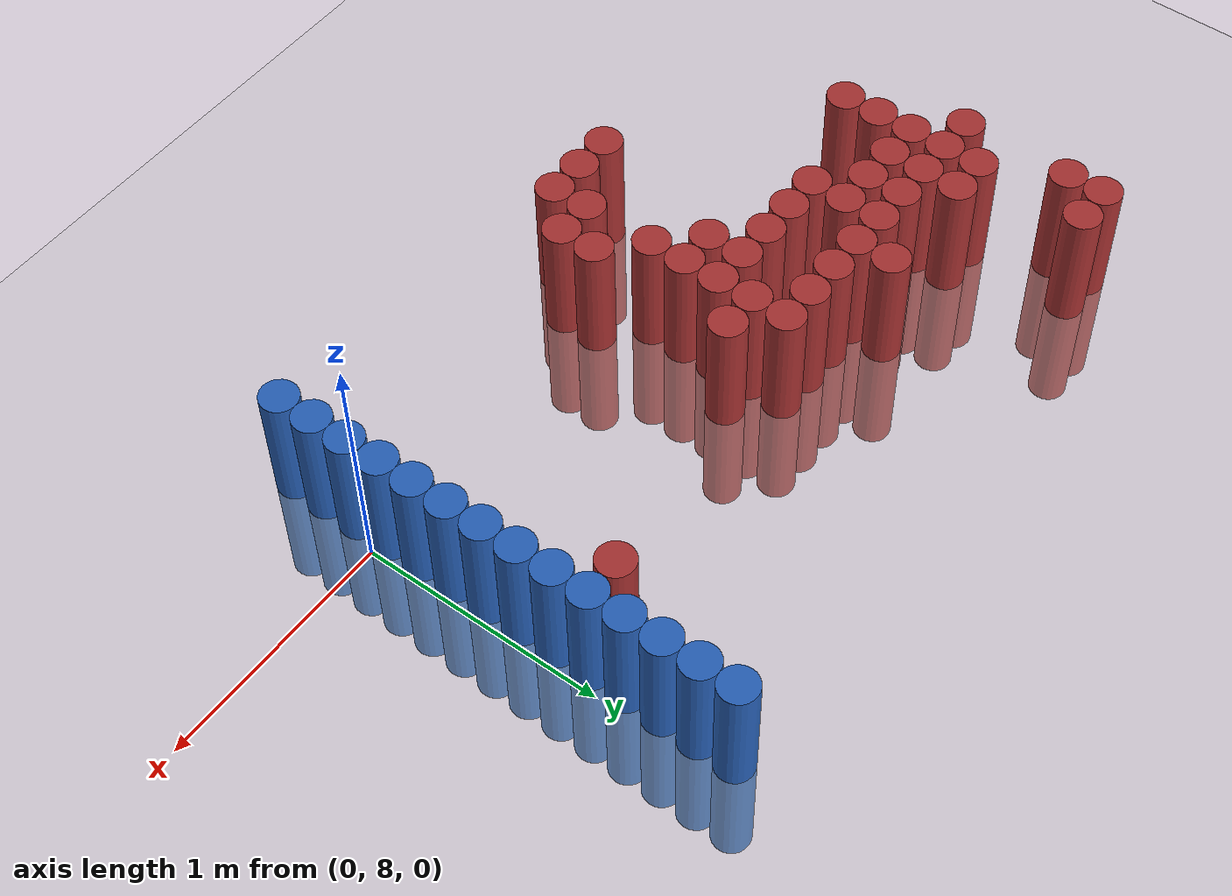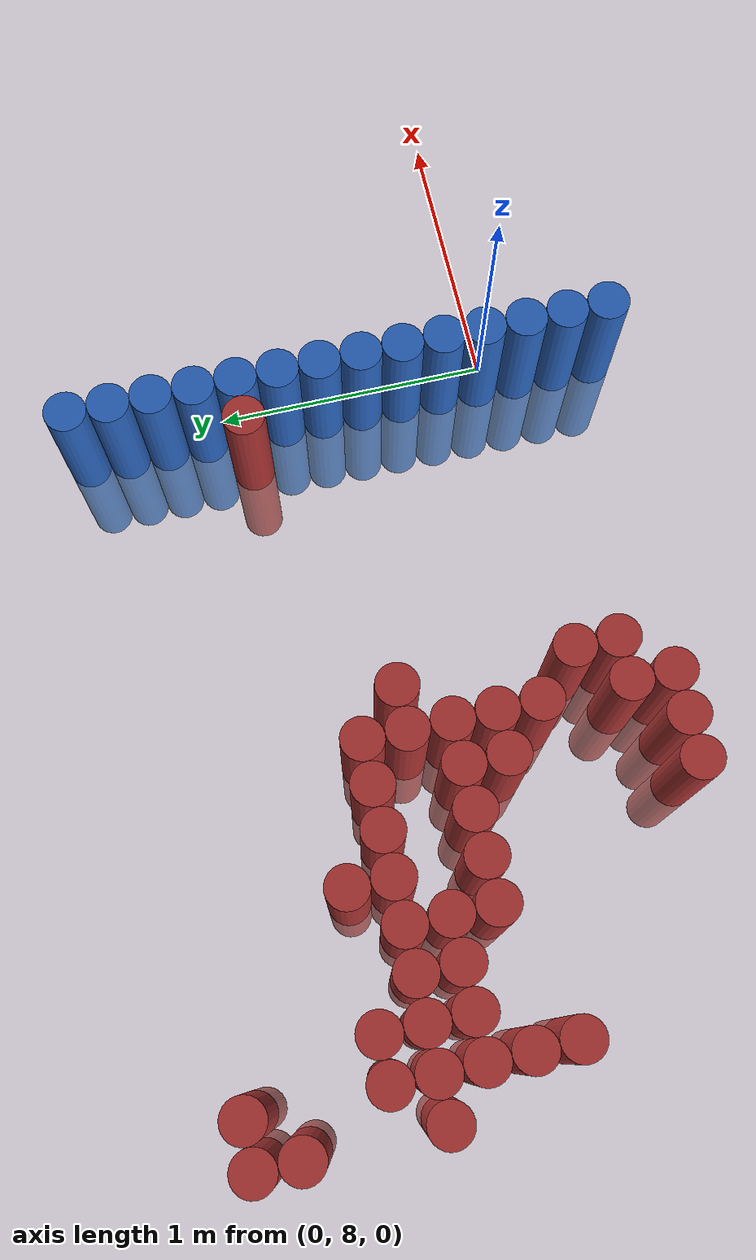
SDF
<sdf version="1.6">
 <world name="default">
  <model name="ground_plane">
   <static>1</static>
   <link name="link">
    <collision name="collision">
     <geometry><plane><normal>0 0 1</normal><size>100 100</size></plane></geometry>
     <surface><friction><ode><mu>100</mu><mu2>50</mu2></ode></friction></surface>
    </collision>
    <visual name="visual">
     <cast_shadows>0</cast_shadows>
     <geometry><plane><normal>0 0 1</normal><size>100 100</size></plane></geometry>
     <material>
      <script><uri>file://media/materials/scripts/gazebo.material</uri><name>Gazebo/Grey</name></script>
     </material>
    </visual>
   </link>
  </model>
  <model name="unit_cylinder_229">
   <static>1</static>
   <pose>-2.625000 8.775000 0.000000 0.000000 0.000000 0.000000</pose>
   <link name="link">
    <inertial>
     <mass>1</mass>
     <inertia><ixx>0.145833</ixx><ixy>0</ixy><ixz>0</ixz><iyy>0.145833</iyy><iyz>0</iyz><izz>0.125</izz></inertia>
    </inertial>
    <collision name="collision">
     <geometry><cylinder><radius>0.075000</radius><length>1</length></cylinder></geometry>
    </collision>
    <visual name="visual">
     <geometry><cylinder><radius>0.075000</radius><length>1</length></cylinder></geometry>
     <material>
      <ambient>0.648000 0.192000 0.192000 1</ambient>
      <diffuse>0.648000 0.192000 0.192000 1</diffuse>
     </material>
     <material>
      <script><name>Gazebo/Grey</name><uri>file://media/materials/scripts/gazebo.material</uri></script>
     </material>
    </visual>
   </link>
  </model>
  <model name="unit_cylinder_230">
   <static>1</static>
   <pose>-2.625000 9.225000 0.000000 0.000000 0.000000 0.000000</pose>
   <link name="link">
    <inertial>
     <mass>1</mass>
     <inertia><ixx>0.145833</ixx><ixy>0</ixy><ixz>0</ixz><iyy>0.145833</iyy><iyz>0</iyz><izz>0.125</izz></inertia>
    </inertial>
    <collision name="collision">
     <geometry><cylinder><radius>0.075000</radius><length>1</length></cylinder></geometry>
    </collision>
    <visual name="visual">
     <geometry><cylinder><radius>0.075000</radius><length>1</length></cylinder></geometry>
     <material>
      <ambient>0.648000 0.192000 0.192000 1</ambient>
      <diffuse>0.648000 0.192000 0.192000 1</diffuse>
     </material>
     <material>
      <script><name>Gazebo/Grey</name><uri>file://media/materials/scripts/gazebo.material</uri></script>
     </material>
    </visual>
   </link>
  </model>
  <model name="unit_cylinder_231">
   <static>1</static>
   <pose>-2.625000 9.375000 0.000000 0.000000 0.000000 0.000000</pose>
   <link name="link">
    <inertial>
     <mass>1</mass>
     <inertia><ixx>0.145833</ixx><ixy>0</ixy><ixz>0</ixz><iyy>0.145833</iyy><iyz>0</iyz><izz>0.125</izz></inertia>
    </inertial>
    <collision name="collision">
     <geometry><cylinder><radius>0.075000</radius><length>1</length></cylinder></geometry>
    </collision>
    <visual name="visual">
     <geometry><cylinder><radius>0.075000</radius><length>1</length></cylinder></geometry>
     <material>
      <ambient>0.648000 0.192000 0.192000 1</ambient>
      <diffuse>0.648000 0.192000 0.192000 1</diffuse>
     </material>
     <material>
      <script><name>Gazebo/Grey</name><uri>file://media/materials/scripts/gazebo.material</uri></script>
     </material>
    </visual>
   </link>
  </model>
  <model name="unit_cylinder_238">
   <static>1</static>
   <pose>-2.475000 8.325000 0.000000 0.000000 0.000000 0.000000</pose>
   <link name="link">
    <inertial>
     <mass>1</mass>
     <inertia><ixx>0.145833</ixx><ixy>0</ixy><ixz>0</ixz><iyy>0.145833</iyy><iyz>0</iyz><izz>0.125</izz></inertia>
    </inertial>
    <collision name="collision">
     <geometry><cylinder><radius>0.075000</radius><length>1</length></cylinder></geometry>
    </collision>
    <visual name="visual">
     <geometry><cylinder><radius>0.075000</radius><length>1</length></cylinder></geometry>
     <material>
      <ambient>0.648000 0.192000 0.192000 1</ambient>
      <diffuse>0.648000 0.192000 0.192000 1</diffuse>
     </material>
     <material>
      <script><name>Gazebo/Grey</name><uri>file://media/materials/scripts/gazebo.material</uri></script>
     </material>
    </visual>
   </link>
  </model>
  <model name="unit_cylinder_239">
   <static>1</static>
   <pose>-2.475000 8.475000 0.000000 0.000000 0.000000 0.000000</pose>
   <link name="link">
    <inertial>
     <mass>1</mass>
     <inertia><ixx>0.145833</ixx><ixy>0</ixy><ixz>0</ixz><iyy>0.145833</iyy><iyz>0</iyz><izz>0.125</izz></inertia>
    </inertial>
    <collision name="collision">
     <geometry><cylinder><radius>0.075000</radius><length>1</length></cylinder></geometry>
    </collision>
    <visual name="visual">
     <geometry><cylinder><radius>0.075000</radius><length>1</length></cylinder></geometry>
     <material>
      <ambient>0.648000 0.192000 0.192000 1</ambient>
      <diffuse>0.648000 0.192000 0.192000 1</diffuse>
     </material>
     <material>
      <script><name>Gazebo/Grey</name><uri>file://media/materials/scripts/gazebo.material</uri></script>
     </material>
    </visual>
   </link>
  </model>
  <model name="unit_cylinder_240">
   <static>1</static>
   <pose>-2.475000 8.625000 0.000000 0.000000 0.000000 0.000000</pose>
   <link name="link">
    <inertial>
     <mass>1</mass>
     <inertia><ixx>0.145833</ixx><ixy>0</ixy><ixz>0</ixz><iyy>0.145833</iyy><iyz>0</iyz><izz>0.125</izz></inertia>
    </inertial>
    <collision name="collision">
     <geometry><cylinder><radius>0.075000</radius><length>1</length></cylinder></geometry>
    </collision>
    <visual name="visual">
     <geometry><cylinder><radius>0.075000</radius><length>1</length></cylinder></geometry>
     <material>
      <ambient>0.648000 0.192000 0.192000 1</ambient>
      <diffuse>0.648000 0.192000 0.192000 1</diffuse>
     </material>
     <material>
      <script><name>Gazebo/Grey</name><uri>file://media/materials/scripts/gazebo.material</uri></script>
     </material>
    </visual>
   </link>
  </model>
  <model name="unit_cylinder_241">
   <static>1</static>
   <pose>-2.475000 8.775000 0.000000 0.000000 0.000000 0.000000</pose>
   <link name="link">
    <inertial>
     <mass>1</mass>
     <inertia><ixx>0.145833</ixx><ixy>0</ixy><ixz>0</ixz><iyy>0.145833</iyy><iyz>0</iyz><izz>0.125</izz></inertia>
    </inertial>
    <collision name="collision">
     <geometry><cylinder><radius>0.075000</radius><length>1</length></cylinder></geometry>
    </collision>
    <visual name="visual">
     <geometry><cylinder><radius>0.075000</radius><length>1</length></cylinder></geometry>
     <material>
      <ambient>0.648000 0.192000 0.192000 1</ambient>
      <diffuse>0.648000 0.192000 0.192000 1</diffuse>
     </material>
     <material>
      <script><name>Gazebo/Grey</name><uri>file://media/materials/scripts/gazebo.material</uri></script>
     </material>
    </visual>
   </link>
  </model>
  <model name="unit_cylinder_242">
   <static>1</static>
   <pose>-2.475000 8.925000 0.000000 0.000000 0.000000 0.000000</pose>
   <link name="link">
    <inertial>
     <mass>1</mass>
     <inertia><ixx>0.145833</ixx><ixy>0</ixy><ixz>0</ixz><iyy>0.145833</iyy><iyz>0</iyz><izz>0.125</izz></inertia>
    </inertial>
    <collision name="collision">
     <geometry><cylinder><radius>0.075000</radius><length>1</length></cylinder></geometry>
    </collision>
    <visual name="visual">
     <geometry><cylinder><radius>0.075000</radius><length>1</length></cylinder></geometry>
     <material>
      <ambient>0.648000 0.192000 0.192000 1</ambient>
      <diffuse>0.648000 0.192000 0.192000 1</diffuse>
     </material>
     <material>
      <script><name>Gazebo/Grey</name><uri>file://media/materials/scripts/gazebo.material</uri></script>
     </material>
    </visual>
   </link>
  </model>
  <model name="unit_cylinder_243">
   <static>1</static>
   <pose>-2.475000 9.375000 0.000000 0.000000 0.000000 0.000000</pose>
   <link name="link">
    <inertial>
     <mass>1</mass>
     <inertia><ixx>0.145833</ixx><ixy>0</ixy><ixz>0</ixz><iyy>0.145833</iyy><iyz>0</iyz><izz>0.125</izz></inertia>
    </inertial>
    <collision name="collision">
     <geometry><cylinder><radius>0.075000</radius><length>1</length></cylinder></geometry>
    </collision>
    <visual name="visual">
     <geometry><cylinder><radius>0.075000</radius><length>1</length></cylinder></geometry>
     <material>
      <ambient>0.648000 0.192000 0.192000 1</ambient>
      <diffuse>0.648000 0.192000 0.192000 1</diffuse>
     </material>
     <material>
      <script><name>Gazebo/Grey</name><uri>file://media/materials/scripts/gazebo.material</uri></script>
     </material>
    </visual>
   </link>
  </model>
  <model name="unit_cylinder_250">
   <static>1</static>
   <pose>-2.325000 8.625000 0.000000 0.000000 0.000000 0.000000</pose>
   <link name="link">
    <inertial>
     <mass>1</mass>
     <inertia><ixx>0.145833</ixx><ixy>0</ixy><ixz>0</ixz><iyy>0.145833</iyy><iyz>0</iyz><izz>0.125</izz></inertia>
    </inertial>
    <collision name="collision">
     <geometry><cylinder><radius>0.075000</radius><length>1</length></cylinder></geometry>
    </collision>
    <visual name="visual">
     <geometry><cylinder><radius>0.075000</radius><length>1</length></cylinder></geometry>
     <material>
      <ambient>0.648000 0.192000 0.192000 1</ambient>
      <diffuse>0.648000 0.192000 0.192000 1</diffuse>
     </material>
     <material>
      <script><name>Gazebo/Grey</name><uri>file://media/materials/scripts/gazebo.material</uri></script>
     </material>
    </visual>
   </link>
  </model>
  <model name="unit_cylinder_251">
   <static>1</static>
   <pose>-2.325000 8.775000 0.000000 0.000000 0.000000 0.000000</pose>
   <link name="link">
    <inertial>
     <mass>1</mass>
     <inertia><ixx>0.145833</ixx><ixy>0</ixy><ixz>0</ixz><iyy>0.145833</iyy><iyz>0</iyz><izz>0.125</izz></inertia>
    </inertial>
    <collision name="collision">
     <geometry><cylinder><radius>0.075000</radius><length>1</length></cylinder></geometry>
    </collision>
    <visual name="visual">
     <geometry><cylinder><radius>0.075000</radius><length>1</length></cylinder></geometry>
     <material>
      <ambient>0.648000 0.192000 0.192000 1</ambient>
      <diffuse>0.648000 0.192000 0.192000 1</diffuse>
     </material>
     <material>
      <script><name>Gazebo/Grey</name><uri>file://media/materials/scripts/gazebo.material</uri></script>
     </material>
    </visual>
   </link>
  </model>
  <model name="unit_cylinder_252">
   <static>1</static>
   <pose>-2.325000 8.925000 0.000000 0.000000 0.000000 0.000000</pose>
   <link name="link">
    <inertial>
     <mass>1</mass>
     <inertia><ixx>0.145833</ixx><ixy>0</ixy><ixz>0</ixz><iyy>0.145833</iyy><iyz>0</iyz><izz>0.125</izz></inertia>
    </inertial>
    <collision name="collision">
     <geometry><cylinder><radius>0.075000</radius><length>1</length></cylinder></geometry>
    </collision>
    <visual name="visual">
     <geometry><cylinder><radius>0.075000</radius><length>1</length></cylinder></geometry>
     <material>
      <ambient>0.648000 0.192000 0.192000 1</ambient>
      <diffuse>0.648000 0.192000 0.192000 1</diffuse>
     </material>
     <material>
      <script><name>Gazebo/Grey</name><uri>file://media/materials/scripts/gazebo.material</uri></script>
     </material>
    </visual>
   </link>
  </model>
  <model name="unit_cylinder_261">
   <static>1</static>
   <pose>-2.175000 8.625000 0.000000 0.000000 0.000000 0.000000</pose>
   <link name="link">
    <inertial>
     <mass>1</mass>
     <inertia><ixx>0.145833</ixx><ixy>0</ixy><ixz>0</ixz><iyy>0.145833</iyy><iyz>0</iyz><izz>0.125</izz></inertia>
    </inertial>
    <collision name="collision">
     <geometry><cylinder><radius>0.075000</radius><length>1</length></cylinder></geometry>
    </collision>
    <visual name="visual">
     <geometry><cylinder><radius>0.075000</radius><length>1</length></cylinder></geometry>
     <material>
      <ambient>0.648000 0.192000 0.192000 1</ambient>
      <diffuse>0.648000 0.192000 0.192000 1</diffuse>
     </material>
     <material>
      <script><name>Gazebo/Grey</name><uri>file://media/materials/scripts/gazebo.material</uri></script>
     </material>
    </visual>
   </link>
  </model>
  <model name="unit_cylinder_262">
   <static>1</static>
   <pose>-2.175000 8.775000 0.000000 0.000000 0.000000 0.000000</pose>
   <link name="link">
    <inertial>
     <mass>1</mass>
     <inertia><ixx>0.145833</ixx><ixy>0</ixy><ixz>0</ixz><iyy>0.145833</iyy><iyz>0</iyz><izz>0.125</izz></inertia>
    </inertial>
    <collision name="collision">
     <geometry><cylinder><radius>0.075000</radius><length>1</length></cylinder></geometry>
    </collision>
    <visual name="visual">
     <geometry><cylinder><radius>0.075000</radius><length>1</length></cylinder></geometry>
     <material>
      <ambient>0.648000 0.192000 0.192000 1</ambient>
      <diffuse>0.648000 0.192000 0.192000 1</diffuse>
     </material>
     <material>
      <script><name>Gazebo/Grey</name><uri>file://media/materials/scripts/gazebo.material</uri></script>
     </material>
    </visual>
   </link>
  </model>
  <model name="unit_cylinder_265">
   <static>1</static>
   <pose>-2.025000 8.475000 0.000000 0.000000 0.000000 0.000000</pose>
   <link name="link">
    <inertial>
     <mass>1</mass>
     <inertia><ixx>0.145833</ixx><ixy>0</ixy><ixz>0</ixz><iyy>0.145833</iyy><iyz>0</iyz><izz>0.125</izz></inertia>
    </inertial>
    <collision name="collision">
     <geometry><cylinder><radius>0.075000</radius><length>1</length></cylinder></geometry>
    </collision>
    <visual name="visual">
     <geometry><cylinder><radius>0.075000</radius><length>1</length></cylinder></geometry>
     <material>
      <ambient>0.648000 0.192000 0.192000 1</ambient>
      <diffuse>0.648000 0.192000 0.192000 1</diffuse>
     </material>
     <material>
      <script><name>Gazebo/Grey</name><uri>file://media/materials/scripts/gazebo.material</uri></script>
     </material>
    </visual>
   </link>
  </model>
  <model name="unit_cylinder_266">
   <static>1</static>
   <pose>-2.025000 8.625000 0.000000 0.000000 0.000000 0.000000</pose>
   <link name="link">
    <inertial>
     <mass>1</mass>
     <inertia><ixx>0.145833</ixx><ixy>0</ixy><ixz>0</ixz><iyy>0.145833</iyy><iyz>0</iyz><izz>0.125</izz></inertia>
    </inertial>
    <collision name="collision">
     <geometry><cylinder><radius>0.075000</radius><length>1</length></cylinder></geometry>
    </collision>
    <visual name="visual">
     <geometry><cylinder><radius>0.075000</radius><length>1</length></cylinder></geometry>
     <material>
      <ambient>0.648000 0.192000 0.192000 1</ambient>
      <diffuse>0.648000 0.192000 0.192000 1</diffuse>
     </material>
     <material>
      <script><name>Gazebo/Grey</name><uri>file://media/materials/scripts/gazebo.material</uri></script>
     </material>
    </visual>
   </link>
  </model>
  <model name="unit_cylinder_267">
   <static>1</static>
   <pose>-2.025000 8.775000 0.000000 0.000000 0.000000 0.000000</pose>
   <link name="link">
    <inertial>
     <mass>1</mass>
     <inertia><ixx>0.145833</ixx><ixy>0</ixy><ixz>0</ixz><iyy>0.145833</iyy><iyz>0</iyz><izz>0.125</izz></inertia>
    </inertial>
    <collision name="collision">
     <geometry><cylinder><radius>0.075000</radius><length>1</length></cylinder></geometry>
    </collision>
    <visual name="visual">
     <geometry><cylinder><radius>0.075000</radius><length>1</length></cylinder></geometry>
     <material>
      <ambient>0.648000 0.192000 0.192000 1</ambient>
      <diffuse>0.648000 0.192000 0.192000 1</diffuse>
     </material>
     <material>
      <script><name>Gazebo/Grey</name><uri>file://media/materials/scripts/gazebo.material</uri></script>
     </material>
    </visual>
   </link>
  </model>
  <model name="unit_cylinder_273">
   <static>1</static>
   <pose>-1.875000 8.475000 0.000000 0.000000 0.000000 0.000000</pose>
   <link name="link">
    <inertial>
     <mass>1</mass>
     <inertia><ixx>0.145833</ixx><ixy>0</ixy><ixz>0</ixz><iyy>0.145833</iyy><iyz>0</iyz><izz>0.125</izz></inertia>
    </inertial>
    <collision name="collision">
     <geometry><cylinder><radius>0.075000</radius><length>1</length></cylinder></geometry>
    </collision>
    <visual name="visual">
     <geometry><cylinder><radius>0.075000</radius><length>1</length></cylinder></geometry>
     <material>
      <ambient>0.648000 0.192000 0.192000 1</ambient>
      <diffuse>0.648000 0.192000 0.192000 1</diffuse>
     </material>
     <material>
      <script><name>Gazebo/Grey</name><uri>file://media/materials/scripts/gazebo.material</uri></script>
     </material>
    </visual>
   </link>
  </model>
  <model name="unit_cylinder_274">
   <static>1</static>
   <pose>-1.875000 8.775000 0.000000 0.000000 0.000000 0.000000</pose>
   <link name="link">
    <inertial>
     <mass>1</mass>
     <inertia><ixx>0.145833</ixx><ixy>0</ixy><ixz>0</ixz><iyy>0.145833</iyy><iyz>0</iyz><izz>0.125</izz></inertia>
    </inertial>
    <collision name="collision">
     <geometry><cylinder><radius>0.075000</radius><length>1</length></cylinder></geometry>
    </collision>
    <visual name="visual">
     <geometry><cylinder><radius>0.075000</radius><length>1</length></cylinder></geometry>
     <material>
      <ambient>0.648000 0.192000 0.192000 1</ambient>
      <diffuse>0.648000 0.192000 0.192000 1</diffuse>
     </material>
     <material>
      <script><name>Gazebo/Grey</name><uri>file://media/materials/scripts/gazebo.material</uri></script>
     </material>
    </visual>
   </link>
  </model>
  <model name="unit_cylinder_275">
   <static>1</static>
   <pose>-1.875000 8.925000 0.000000 0.000000 0.000000 0.000000</pose>
   <link name="link">
    <inertial>
     <mass>1</mass>
     <inertia><ixx>0.145833</ixx><ixy>0</ixy><ixz>0</ixz><iyy>0.145833</iyy><iyz>0</iyz><izz>0.125</izz></inertia>
    </inertial>
    <collision name="collision">
     <geometry><cylinder><radius>0.075000</radius><length>1</length></cylinder></geometry>
    </collision>
    <visual name="visual">
     <geometry><cylinder><radius>0.075000</radius><length>1</length></cylinder></geometry>
     <material>
      <ambient>0.648000 0.192000 0.192000 1</ambient>
      <diffuse>0.648000 0.192000 0.192000 1</diffuse>
     </material>
     <material>
      <script><name>Gazebo/Grey</name><uri>file://media/materials/scripts/gazebo.material</uri></script>
     </material>
    </visual>
   </link>
  </model>
  <model name="unit_cylinder_286">
   <static>1</static>
   <pose>-1.725000 7.725000 0.000000 0.000000 0.000000 0.000000</pose>
   <link name="link">
    <inertial>
     <mass>1</mass>
     <inertia><ixx>0.145833</ixx><ixy>0</ixy><ixz>0</ixz><iyy>0.145833</iyy><iyz>0</iyz><izz>0.125</izz></inertia>
    </inertial>
    <collision name="collision">
     <geometry><cylinder><radius>0.075000</radius><length>1</length></cylinder></geometry>
    </collision>
    <visual name="visual">
     <geometry><cylinder><radius>0.075000</radius><length>1</length></cylinder></geometry>
     <material>
      <ambient>0.648000 0.192000 0.192000 1</ambient>
      <diffuse>0.648000 0.192000 0.192000 1</diffuse>
     </material>
     <material>
      <script><name>Gazebo/Grey</name><uri>file://media/materials/scripts/gazebo.material</uri></script>
     </material>
    </visual>
   </link>
  </model>
  <model name="unit_cylinder_287">
   <static>1</static>
   <pose>-1.725000 8.475000 0.000000 0.000000 0.000000 0.000000</pose>
   <link name="link">
    <inertial>
     <mass>1</mass>
     <inertia><ixx>0.145833</ixx><ixy>0</ixy><ixz>0</ixz><iyy>0.145833</iyy><iyz>0</iyz><izz>0.125</izz></inertia>
    </inertial>
    <collision name="collision">
     <geometry><cylinder><radius>0.075000</radius><length>1</length></cylinder></geometry>
    </collision>
    <visual name="visual">
     <geometry><cylinder><radius>0.075000</radius><length>1</length></cylinder></geometry>
     <material>
      <ambient>0.648000 0.192000 0.192000 1</ambient>
      <diffuse>0.648000 0.192000 0.192000 1</diffuse>
     </material>
     <material>
      <script><name>Gazebo/Grey</name><uri>file://media/materials/scripts/gazebo.material</uri></script>
     </material>
    </visual>
   </link>
  </model>
  <model name="unit_cylinder_288">
   <static>1</static>
   <pose>-1.725000 8.775000 0.000000 0.000000 0.000000 0.000000</pose>
   <link name="link">
    <inertial>
     <mass>1</mass>
     <inertia><ixx>0.145833</ixx><ixy>0</ixy><ixz>0</ixz><iyy>0.145833</iyy><iyz>0</iyz><izz>0.125</izz></inertia>
    </inertial>
    <collision name="collision">
     <geometry><cylinder><radius>0.075000</radius><length>1</length></cylinder></geometry>
    </collision>
    <visual name="visual">
     <geometry><cylinder><radius>0.075000</radius><length>1</length></cylinder></geometry>
     <material>
      <ambient>0.648000 0.192000 0.192000 1</ambient>
      <diffuse>0.648000 0.192000 0.192000 1</diffuse>
     </material>
     <material>
      <script><name>Gazebo/Grey</name><uri>file://media/materials/scripts/gazebo.material</uri></script>
     </material>
    </visual>
   </link>
  </model>
  <model name="unit_cylinder_298">
   <static>1</static>
   <pose>-1.575000 7.725000 0.000000 0.000000 0.000000 0.000000</pose>
   <link name="link">
    <inertial>
     <mass>1</mass>
     <inertia><ixx>0.145833</ixx><ixy>0</ixy><ixz>0</ixz><iyy>0.145833</iyy><iyz>0</iyz><izz>0.125</izz></inertia>
    </inertial>
    <collision name="collision">
     <geometry><cylinder><radius>0.075000</radius><length>1</length></cylinder></geometry>
    </collision>
    <visual name="visual">
     <geometry><cylinder><radius>0.075000</radius><length>1</length></cylinder></geometry>
     <material>
      <ambient>0.648000 0.192000 0.192000 1</ambient>
      <diffuse>0.648000 0.192000 0.192000 1</diffuse>
     </material>
     <material>
      <script><name>Gazebo/Grey</name><uri>file://media/materials/scripts/gazebo.material</uri></script>
     </material>
    </visual>
   </link>
  </model>
  <model name="unit_cylinder_299">
   <static>1</static>
   <pose>-1.575000 8.325000 0.000000 0.000000 0.000000 0.000000</pose>
   <link name="link">
    <inertial>
     <mass>1</mass>
     <inertia><ixx>0.145833</ixx><ixy>0</ixy><ixz>0</ixz><iyy>0.145833</iyy><iyz>0</iyz><izz>0.125</izz></inertia>
    </inertial>
    <collision name="collision">
     <geometry><cylinder><radius>0.075000</radius><length>1</length></cylinder></geometry>
    </collision>
    <visual name="visual">
     <geometry><cylinder><radius>0.075000</radius><length>1</length></cylinder></geometry>
     <material>
      <ambient>0.648000 0.192000 0.192000 1</ambient>
      <diffuse>0.648000 0.192000 0.192000 1</diffuse>
     </material>
     <material>
      <script><name>Gazebo/Grey</name><uri>file://media/materials/scripts/gazebo.material</uri></script>
     </material>
    </visual>
   </link>
  </model>
  <model name="unit_cylinder_300">
   <static>1</static>
   <pose>-1.575000 8.475000 0.000000 0.000000 0.000000 0.000000</pose>
   <link name="link">
    <inertial>
     <mass>1</mass>
     <inertia><ixx>0.145833</ixx><ixy>0</ixy><ixz>0</ixz><iyy>0.145833</iyy><iyz>0</iyz><izz>0.125</izz></inertia>
    </inertial>
    <collision name="collision">
     <geometry><cylinder><radius>0.075000</radius><length>1</length></cylinder></geometry>
    </collision>
    <visual name="visual">
     <geometry><cylinder><radius>0.075000</radius><length>1</length></cylinder></geometry>
     <material>
      <ambient>0.648000 0.192000 0.192000 1</ambient>
      <diffuse>0.648000 0.192000 0.192000 1</diffuse>
     </material>
     <material>
      <script><name>Gazebo/Grey</name><uri>file://media/materials/scripts/gazebo.material</uri></script>
     </material>
    </visual>
   </link>
  </model>
  <model name="unit_cylinder_301">
   <static>1</static>
   <pose>-1.575000 8.775000 0.000000 0.000000 0.000000 0.000000</pose>
   <link name="link">
    <inertial>
     <mass>1</mass>
     <inertia><ixx>0.145833</ixx><ixy>0</ixy><ixz>0</ixz><iyy>0.145833</iyy><iyz>0</iyz><izz>0.125</izz></inertia>
    </inertial>
    <collision name="collision">
     <geometry><cylinder><radius>0.075000</radius><length>1</length></cylinder></geometry>
    </collision>
    <visual name="visual">
     <geometry><cylinder><radius>0.075000</radius><length>1</length></cylinder></geometry>
     <material>
      <ambient>0.648000 0.192000 0.192000 1</ambient>
      <diffuse>0.648000 0.192000 0.192000 1</diffuse>
     </material>
     <material>
      <script><name>Gazebo/Grey</name><uri>file://media/materials/scripts/gazebo.material</uri></script>
     </material>
    </visual>
   </link>
  </model>
  <model name="unit_cylinder_309">
   <static>1</static>
   <pose>-1.425000 7.725000 0.000000 0.000000 0.000000 0.000000</pose>
   <link name="link">
    <inertial>
     <mass>1</mass>
     <inertia><ixx>0.145833</ixx><ixy>0</ixy><ixz>0</ixz><iyy>0.145833</iyy><iyz>0</iyz><izz>0.125</izz></inertia>
    </inertial>
    <collision name="collision">
     <geometry><cylinder><radius>0.075000</radius><length>1</length></cylinder></geometry>
    </collision>
    <visual name="visual">
     <geometry><cylinder><radius>0.075000</radius><length>1</length></cylinder></geometry>
     <material>
      <ambient>0.648000 0.192000 0.192000 1</ambient>
      <diffuse>0.648000 0.192000 0.192000 1</diffuse>
     </material>
     <material>
      <script><name>Gazebo/Grey</name><uri>file://media/materials/scripts/gazebo.material</uri></script>
     </material>
    </visual>
   </link>
  </model>
  <model name="unit_cylinder_310">
   <static>1</static>
   <pose>-1.425000 7.875000 0.000000 0.000000 0.000000 0.000000</pose>
   <link name="link">
    <inertial>
     <mass>1</mass>
     <inertia><ixx>0.145833</ixx><ixy>0</ixy><ixz>0</ixz><iyy>0.145833</iyy><iyz>0</iyz><izz>0.125</izz></inertia>
    </inertial>
    <collision name="collision">
     <geometry><cylinder><radius>0.075000</radius><length>1</length></cylinder></geometry>
    </collision>
    <visual name="visual">
     <geometry><cylinder><radius>0.075000</radius><length>1</length></cylinder></geometry>
     <material>
      <ambient>0.648000 0.192000 0.192000 1</ambient>
      <diffuse>0.648000 0.192000 0.192000 1</diffuse>
     </material>
     <material>
      <script><name>Gazebo/Grey</name><uri>file://media/materials/scripts/gazebo.material</uri></script>
     </material>
    </visual>
   </link>
  </model>
  <model name="unit_cylinder_311">
   <static>1</static>
   <pose>-1.425000 8.175000 0.000000 0.000000 0.000000 0.000000</pose>
   <link name="link">
    <inertial>
     <mass>1</mass>
     <inertia><ixx>0.145833</ixx><ixy>0</ixy><ixz>0</ixz><iyy>0.145833</iyy><iyz>0</iyz><izz>0.125</izz></inertia>
    </inertial>
    <collision name="collision">
     <geometry><cylinder><radius>0.075000</radius><length>1</length></cylinder></geometry>
    </collision>
    <visual name="visual">
     <geometry><cylinder><radius>0.075000</radius><length>1</length></cylinder></geometry>
     <material>
      <ambient>0.648000 0.192000 0.192000 1</ambient>
      <diffuse>0.648000 0.192000 0.192000 1</diffuse>
     </material>
     <material>
      <script><name>Gazebo/Grey</name><uri>file://media/materials/scripts/gazebo.material</uri></script>
     </material>
    </visual>
   </link>
  </model>
  <model name="unit_cylinder_312">
   <static>1</static>
   <pose>-1.425000 8.325000 0.000000 0.000000 0.000000 0.000000</pose>
   <link name="link">
    <inertial>
     <mass>1</mass>
     <inertia><ixx>0.145833</ixx><ixy>0</ixy><ixz>0</ixz><iyy>0.145833</iyy><iyz>0</iyz><izz>0.125</izz></inertia>
    </inertial>
    <collision name="collision">
     <geometry><cylinder><radius>0.075000</radius><length>1</length></cylinder></geometry>
    </collision>
    <visual name="visual">
     <geometry><cylinder><radius>0.075000</radius><length>1</length></cylinder></geometry>
     <material>
      <ambient>0.648000 0.192000 0.192000 1</ambient>
      <diffuse>0.648000 0.192000 0.192000 1</diffuse>
     </material>
     <material>
      <script><name>Gazebo/Grey</name><uri>file://media/materials/scripts/gazebo.material</uri></script>
     </material>
    </visual>
   </link>
  </model>
  <model name="unit_cylinder_313">
   <static>1</static>
   <pose>-1.425000 8.475000 0.000000 0.000000 0.000000 0.000000</pose>
   <link name="link">
    <inertial>
     <mass>1</mass>
     <inertia><ixx>0.145833</ixx><ixy>0</ixy><ixz>0</ixz><iyy>0.145833</iyy><iyz>0</iyz><izz>0.125</izz></inertia>
    </inertial>
    <collision name="collision">
     <geometry><cylinder><radius>0.075000</radius><length>1</length></cylinder></geometry>
    </collision>
    <visual name="visual">
     <geometry><cylinder><radius>0.075000</radius><length>1</length></cylinder></geometry>
     <material>
      <ambient>0.648000 0.192000 0.192000 1</ambient>
      <diffuse>0.648000 0.192000 0.192000 1</diffuse>
     </material>
     <material>
      <script><name>Gazebo/Grey</name><uri>file://media/materials/scripts/gazebo.material</uri></script>
     </material>
    </visual>
   </link>
  </model>
  <model name="unit_cylinder_314">
   <static>1</static>
   <pose>-1.425000 8.625000 0.000000 0.000000 0.000000 0.000000</pose>
   <link name="link">
    <inertial>
     <mass>1</mass>
     <inertia><ixx>0.145833</ixx><ixy>0</ixy><ixz>0</ixz><iyy>0.145833</iyy><iyz>0</iyz><izz>0.125</izz></inertia>
    </inertial>
    <collision name="collision">
     <geometry><cylinder><radius>0.075000</radius><length>1</length></cylinder></geometry>
    </collision>
    <visual name="visual">
     <geometry><cylinder><radius>0.075000</radius><length>1</length></cylinder></geometry>
     <material>
      <ambient>0.648000 0.192000 0.192000 1</ambient>
      <diffuse>0.648000 0.192000 0.192000 1</diffuse>
     </material>
     <material>
      <script><name>Gazebo/Grey</name><uri>file://media/materials/scripts/gazebo.material</uri></script>
     </material>
    </visual>
   </link>
  </model>
  <model name="unit_cylinder_315">
   <static>1</static>
   <pose>-1.425000 8.775000 0.000000 0.000000 0.000000 0.000000</pose>
   <link name="link">
    <inertial>
     <mass>1</mass>
     <inertia><ixx>0.145833</ixx><ixy>0</ixy><ixz>0</ixz><iyy>0.145833</iyy><iyz>0</iyz><izz>0.125</izz></inertia>
    </inertial>
    <collision name="collision">
     <geometry><cylinder><radius>0.075000</radius><length>1</length></cylinder></geometry>
    </collision>
    <visual name="visual">
     <geometry><cylinder><radius>0.075000</radius><length>1</length></cylinder></geometry>
     <material>
      <ambient>0.648000 0.192000 0.192000 1</ambient>
      <diffuse>0.648000 0.192000 0.192000 1</diffuse>
     </material>
     <material>
      <script><name>Gazebo/Grey</name><uri>file://media/materials/scripts/gazebo.material</uri></script>
     </material>
    </visual>
   </link>
  </model>
  <model name="unit_cylinder_320">
   <static>1</static>
   <pose>-1.275000 7.875000 0.000000 0.000000 0.000000 0.000000</pose>
   <link name="link">
    <inertial>
     <mass>1</mass>
     <inertia><ixx>0.145833</ixx><ixy>0</ixy><ixz>0</ixz><iyy>0.145833</iyy><iyz>0</iyz><izz>0.125</izz></inertia>
    </inertial>
    <collision name="collision">
     <geometry><cylinder><radius>0.075000</radius><length>1</length></cylinder></geometry>
    </collision>
    <visual name="visual">
     <geometry><cylinder><radius>0.075000</radius><length>1</length></cylinder></geometry>
     <material>
      <ambient>0.648000 0.192000 0.192000 1</ambient>
      <diffuse>0.648000 0.192000 0.192000 1</diffuse>
     </material>
     <material>
      <script><name>Gazebo/Grey</name><uri>file://media/materials/scripts/gazebo.material</uri></script>
     </material>
    </visual>
   </link>
  </model>
  <model name="unit_cylinder_321">
   <static>1</static>
   <pose>-1.275000 8.025000 0.000000 0.000000 0.000000 0.000000</pose>
   <link name="link">
    <inertial>
     <mass>1</mass>
     <inertia><ixx>0.145833</ixx><ixy>0</ixy><ixz>0</ixz><iyy>0.145833</iyy><iyz>0</iyz><izz>0.125</izz></inertia>
    </inertial>
    <collision name="collision">
     <geometry><cylinder><radius>0.075000</radius><length>1</length></cylinder></geometry>
    </collision>
    <visual name="visual">
     <geometry><cylinder><radius>0.075000</radius><length>1</length></cylinder></geometry>
     <material>
      <ambient>0.648000 0.192000 0.192000 1</ambient>
      <diffuse>0.648000 0.192000 0.192000 1</diffuse>
     </material>
     <material>
      <script><name>Gazebo/Grey</name><uri>file://media/materials/scripts/gazebo.material</uri></script>
     </material>
    </visual>
   </link>
  </model>
  <model name="unit_cylinder_322">
   <static>1</static>
   <pose>-1.275000 8.625000 0.000000 0.000000 0.000000 0.000000</pose>
   <link name="link">
    <inertial>
     <mass>1</mass>
     <inertia><ixx>0.145833</ixx><ixy>0</ixy><ixz>0</ixz><iyy>0.145833</iyy><iyz>0</iyz><izz>0.125</izz></inertia>
    </inertial>
    <collision name="collision">
     <geometry><cylinder><radius>0.075000</radius><length>1</length></cylinder></geometry>
    </collision>
    <visual name="visual">
     <geometry><cylinder><radius>0.075000</radius><length>1</length></cylinder></geometry>
     <material>
      <ambient>0.648000 0.192000 0.192000 1</ambient>
      <diffuse>0.648000 0.192000 0.192000 1</diffuse>
     </material>
     <material>
      <script><name>Gazebo/Grey</name><uri>file://media/materials/scripts/gazebo.material</uri></script>
     </material>
    </visual>
   </link>
  </model>
  <model name="unit_cylinder_331">
   <static>1</static>
   <pose>-0.225000 8.925000 0.000000 0.000000 0.000000 0.000000</pose>
   <link name="link">
    <inertial>
     <mass>1</mass>
     <inertia><ixx>0.145833</ixx><ixy>0</ixy><ixz>0</ixz><iyy>0.145833</iyy><iyz>0</iyz><izz>0.125</izz></inertia>
    </inertial>
    <collision name="collision">
     <geometry><cylinder><radius>0.075000</radius><length>1</length></cylinder></geometry>
    </collision>
    <visual name="visual">
     <geometry><cylinder><radius>0.075000</radius><length>1</length></cylinder></geometry>
     <material>
      <ambient>0.648000 0.192000 0.192000 1</ambient>
      <diffuse>0.648000 0.192000 0.192000 1</diffuse>
     </material>
     <material>
      <script><name>Gazebo/Grey</name><uri>file://media/materials/scripts/gazebo.material</uri></script>
     </material>
    </visual>
   </link>
  </model>
  <model name="unit_cylinder_348">
   <static>1</static>
   <pose>-0.075000 7.575000 0.000000 0.000000 0.000000 0.000000</pose>
   <link name="link">
    <inertial>
     <mass>1</mass>
     <inertia><ixx>0.145833</ixx><ixy>0</ixy><ixz>0</ixz><iyy>0.145833</iyy><iyz>0</iyz><izz>0.125</izz></inertia>
    </inertial>
    <collision name="collision">
     <geometry><cylinder><radius>0.075000</radius><length>1</length></cylinder></geometry>
    </collision>
    <visual name="visual">
     <geometry><cylinder><radius>0.075000</radius><length>1</length></cylinder></geometry>
     <material>
      <ambient>0.152000 0.379000 0.720000 1</ambient>
      <diffuse>0.152000 0.379000 0.720000 1</diffuse>
     </material>
     <material>
      <script><name>Gazebo/Grey</name><uri>file://media/materials/scripts/gazebo.material</uri></script>
     </material>
    </visual>
   </link>
  </model>
  <model name="unit_cylinder_349">
   <static>1</static>
   <pose>-0.075000 7.725000 0.000000 0.000000 0.000000 0.000000</pose>
   <link name="link">
    <inertial>
     <mass>1</mass>
     <inertia><ixx>0.145833</ixx><ixy>0</ixy><ixz>0</ixz><iyy>0.145833</iyy><iyz>0</iyz><izz>0.125</izz></inertia>
    </inertial>
    <collision name="collision">
     <geometry><cylinder><radius>0.075000</radius><length>1</length></cylinder></geometry>
    </collision>
    <visual name="visual">
     <geometry><cylinder><radius>0.075000</radius><length>1</length></cylinder></geometry>
     <material>
      <ambient>0.152000 0.379000 0.720000 1</ambient>
      <diffuse>0.152000 0.379000 0.720000 1</diffuse>
     </material>
     <material>
      <script><name>Gazebo/Grey</name><uri>file://media/materials/scripts/gazebo.material</uri></script>
     </material>
    </visual>
   </link>
  </model>
  <model name="unit_cylinder_350">
   <static>1</static>
   <pose>-0.075000 7.875000 0.000000 0.000000 0.000000 0.000000</pose>
   <link name="link">
    <inertial>
     <mass>1</mass>
     <inertia><ixx>0.145833</ixx><ixy>0</ixy><ixz>0</ixz><iyy>0.145833</iyy><iyz>0</iyz><izz>0.125</izz></inertia>
    </inertial>
    <collision name="collision">
     <geometry><cylinder><radius>0.075000</radius><length>1</length></cylinder></geometry>
    </collision>
    <visual name="visual">
     <geometry><cylinder><radius>0.075000</radius><length>1</length></cylinder></geometry>
     <material>
      <ambient>0.152000 0.379000 0.720000 1</ambient>
      <diffuse>0.152000 0.379000 0.720000 1</diffuse>
     </material>
     <material>
      <script><name>Gazebo/Grey</name><uri>file://media/materials/scripts/gazebo.material</uri></script>
     </material>
    </visual>
   </link>
  </model>
  <model name="unit_cylinder_351">
   <static>1</static>
   <pose>-0.075000 8.025000 0.000000 0.000000 0.000000 0.000000</pose>
   <link name="link">
    <inertial>
     <mass>1</mass>
     <inertia><ixx>0.145833</ixx><ixy>0</ixy><ixz>0</ixz><iyy>0.145833</iyy><iyz>0</iyz><izz>0.125</izz></inertia>
    </inertial>
    <collision name="collision">
     <geometry><cylinder><radius>0.075000</radius><length>1</length></cylinder></geometry>
    </collision>
    <visual name="visual">
     <geometry><cylinder><radius>0.075000</radius><length>1</length></cylinder></geometry>
     <material>
      <ambient>0.152000 0.379000 0.720000 1</ambient>
      <diffuse>0.152000 0.379000 0.720000 1</diffuse>
     </material>
     <material>
      <script><name>Gazebo/Grey</name><uri>file://media/materials/scripts/gazebo.material</uri></script>
     </material>
    </visual>
   </link>
  </model>
  <model name="unit_cylinder_352">
   <static>1</static>
   <pose>-0.075000 8.175000 0.000000 0.000000 0.000000 0.000000</pose>
   <link name="link">
    <inertial>
     <mass>1</mass>
     <inertia><ixx>0.145833</ixx><ixy>0</ixy><ixz>0</ixz><iyy>0.145833</iyy><iyz>0</iyz><izz>0.125</izz></inertia>
    </inertial>
    <collision name="collision">
     <geometry><cylinder><radius>0.075000</radius><length>1</length></cylinder></geometry>
    </collision>
    <visual name="visual">
     <geometry><cylinder><radius>0.075000</radius><length>1</length></cylinder></geometry>
     <material>
      <ambient>0.152000 0.379000 0.720000 1</ambient>
      <diffuse>0.152000 0.379000 0.720000 1</diffuse>
     </material>
     <material>
      <script><name>Gazebo/Grey</name><uri>file://media/materials/scripts/gazebo.material</uri></script>
     </material>
    </visual>
   </link>
  </model>
  <model name="unit_cylinder_353">
   <static>1</static>
   <pose>-0.075000 8.325000 0.000000 0.000000 0.000000 0.000000</pose>
   <link name="link">
    <inertial>
     <mass>1</mass>
     <inertia><ixx>0.145833</ixx><ixy>0</ixy><ixz>0</ixz><iyy>0.145833</iyy><iyz>0</iyz><izz>0.125</izz></inertia>
    </inertial>
    <collision name="collision">
     <geometry><cylinder><radius>0.075000</radius><length>1</length></cylinder></geometry>
    </collision>
    <visual name="visual">
     <geometry><cylinder><radius>0.075000</radius><length>1</length></cylinder></geometry>
     <material>
      <ambient>0.152000 0.379000 0.720000 1</ambient>
      <diffuse>0.152000 0.379000 0.720000 1</diffuse>
     </material>
     <material>
      <script><name>Gazebo/Grey</name><uri>file://media/materials/scripts/gazebo.material</uri></script>
     </material>
    </visual>
   </link>
  </model>
  <model name="unit_cylinder_354">
   <static>1</static>
   <pose>-0.075000 8.475000 0.000000 0.000000 0.000000 0.000000</pose>
   <link name="link">
    <inertial>
     <mass>1</mass>
     <inertia><ixx>0.145833</ixx><ixy>0</ixy><ixz>0</ixz><iyy>0.145833</iyy><iyz>0</iyz><izz>0.125</izz></inertia>
    </inertial>
    <collision name="collision">
     <geometry><cylinder><radius>0.075000</radius><length>1</length></cylinder></geometry>
    </collision>
    <visual name="visual">
     <geometry><cylinder><radius>0.075000</radius><length>1</length></cylinder></geometry>
     <material>
      <ambient>0.152000 0.379000 0.720000 1</ambient>
      <diffuse>0.152000 0.379000 0.720000 1</diffuse>
     </material>
     <material>
      <script><name>Gazebo/Grey</name><uri>file://media/materials/scripts/gazebo.material</uri></script>
     </material>
    </visual>
   </link>
  </model>
  <model name="unit_cylinder_355">
   <static>1</static>
   <pose>-0.075000 8.625000 0.000000 0.000000 0.000000 0.000000</pose>
   <link name="link">
    <inertial>
     <mass>1</mass>
     <inertia><ixx>0.145833</ixx><ixy>0</ixy><ixz>0</ixz><iyy>0.145833</iyy><iyz>0</iyz><izz>0.125</izz></inertia>
    </inertial>
    <collision name="collision">
     <geometry><cylinder><radius>0.075000</radius><length>1</length></cylinder></geometry>
    </collision>
    <visual name="visual">
     <geometry><cylinder><radius>0.075000</radius><length>1</length></cylinder></geometry>
     <material>
      <ambient>0.152000 0.379000 0.720000 1</ambient>
      <diffuse>0.152000 0.379000 0.720000 1</diffuse>
     </material>
     <material>
      <script><name>Gazebo/Grey</name><uri>file://media/materials/scripts/gazebo.material</uri></script>
     </material>
    </visual>
   </link>
  </model>
  <model name="unit_cylinder_356">
   <static>1</static>
   <pose>-0.075000 8.775000 0.000000 0.000000 0.000000 0.000000</pose>
   <link name="link">
    <inertial>
     <mass>1</mass>
     <inertia><ixx>0.145833</ixx><ixy>0</ixy><ixz>0</ixz><iyy>0.145833</iyy><iyz>0</iyz><izz>0.125</izz></inertia>
    </inertial>
    <collision name="collision">
     <geometry><cylinder><radius>0.075000</radius><length>1</length></cylinder></geometry>
    </collision>
    <visual name="visual">
     <geometry><cylinder><radius>0.075000</radius><length>1</length></cylinder></geometry>
     <material>
      <ambient>0.152000 0.379000 0.720000 1</ambient>
      <diffuse>0.152000 0.379000 0.720000 1</diffuse>
     </material>
     <material>
      <script><name>Gazebo/Grey</name><uri>file://media/materials/scripts/gazebo.material</uri></script>
     </material>
    </visual>
   </link>
  </model>
  <model name="unit_cylinder_357">
   <static>1</static>
   <pose>-0.075000 8.925000 0.000000 0.000000 0.000000 0.000000</pose>
   <link name="link">
    <inertial>
     <mass>1</mass>
     <inertia><ixx>0.145833</ixx><ixy>0</ixy><ixz>0</ixz><iyy>0.145833</iyy><iyz>0</iyz><izz>0.125</izz></inertia>
    </inertial>
    <collision name="collision">
     <geometry><cylinder><radius>0.075000</radius><length>1</length></cylinder></geometry>
    </collision>
    <visual name="visual">
     <geometry><cylinder><radius>0.075000</radius><length>1</length></cylinder></geometry>
     <material>
      <ambient>0.152000 0.379000 0.720000 1</ambient>
      <diffuse>0.152000 0.379000 0.720000 1</diffuse>
     </material>
     <material>
      <script><name>Gazebo/Grey</name><uri>file://media/materials/scripts/gazebo.material</uri></script>
     </material>
    </visual>
   </link>
  </model>
  <model name="unit_cylinder_358">
   <static>1</static>
   <pose>-0.075000 9.075000 0.000000 0.000000 0.000000 0.000000</pose>
   <link name="link">
    <inertial>
     <mass>1</mass>
     <inertia><ixx>0.145833</ixx><ixy>0</ixy><ixz>0</ixz><iyy>0.145833</iyy><iyz>0</iyz><izz>0.125</izz></inertia>
    </inertial>
    <collision name="collision">
     <geometry><cylinder><radius>0.075000</radius><length>1</length></cylinder></geometry>
    </collision>
    <visual name="visual">
     <geometry><cylinder><radius>0.075000</radius><length>1</length></cylinder></geometry>
     <material>
      <ambient>0.152000 0.379000 0.720000 1</ambient>
      <diffuse>0.152000 0.379000 0.720000 1</diffuse>
     </material>
     <material>
      <script><name>Gazebo/Grey</name><uri>file://media/materials/scripts/gazebo.material</uri></script>
     </material>
    </visual>
   </link>
  </model>
  <model name="unit_cylinder_359">
   <static>1</static>
   <pose>-0.075000 9.225000 0.000000 0.000000 0.000000 0.000000</pose>
   <link name="link">
    <inertial>
     <mass>1</mass>
     <inertia><ixx>0.145833</ixx><ixy>0</ixy><ixz>0</ixz><iyy>0.145833</iyy><iyz>0</iyz><izz>0.125</izz></inertia>
    </inertial>
    <collision name="collision">
     <geometry><cylinder><radius>0.075000</radius><length>1</length></cylinder></geometry>
    </collision>
    <visual name="visual">
     <geometry><cylinder><radius>0.075000</radius><length>1</length></cylinder></geometry>
     <material>
      <ambient>0.152000 0.379000 0.720000 1</ambient>
      <diffuse>0.152000 0.379000 0.720000 1</diffuse>
     </material>
     <material>
      <script><name>Gazebo/Grey</name><uri>file://media/materials/scripts/gazebo.material</uri></script>
     </material>
    </visual>
   </link>
  </model>
  <model name="unit_cylinder_360">
   <static>1</static>
   <pose>-0.075000 9.375000 0.000000 0.000000 0.000000 0.000000</pose>
   <link name="link">
    <inertial>
     <mass>1</mass>
     <inertia><ixx>0.145833</ixx><ixy>0</ixy><ixz>0</ixz><iyy>0.145833</iyy><iyz>0</iyz><izz>0.125</izz></inertia>
    </inertial>
    <collision name="collision">
     <geometry><cylinder><radius>0.075000</radius><length>1</length></cylinder></geometry>
    </collision>
    <visual name="visual">
     <geometry><cylinder><radius>0.075000</radius><length>1</length></cylinder></geometry>
     <material>
      <ambient>0.152000 0.379000 0.720000 1</ambient>
      <diffuse>0.152000 0.379000 0.720000 1</diffuse>
     </material>
     <material>
      <script><name>Gazebo/Grey</name><uri>file://media/materials/scripts/gazebo.material</uri></script>
     </material>
    </visual>
   </link>
  </model>
  <model name="unit_cylinder_361">
   <static>1</static>
   <pose>-0.075000 9.525000 0.000000 0.000000 0.000000 0.000000</pose>
   <link name="link">
    <inertial>
     <mass>1</mass>
     <inertia><ixx>0.145833</ixx><ixy>0</ixy><ixz>0</ixz><iyy>0.145833</iyy><iyz>0</iyz><izz>0.125</izz></inertia>
    </inertial>
    <collision name="collision">
     <geometry><cylinder><radius>0.075000</radius><length>1</length></cylinder></geometry>
    </collision>
    <visual name="visual">
     <geometry><cylinder><radius>0.075000</radius><length>1</length></cylinder></geometry>
     <material>
      <ambient>0.152000 0.379000 0.720000 1</ambient>
      <diffuse>0.152000 0.379000 0.720000 1</diffuse>
     </material>
     <material>
      <script><name>Gazebo/Grey</name><uri>file://media/materials/scripts/gazebo.material</uri></script>
     </material>
    </visual>
   </link>
  </model>
 </world>
</sdf>
